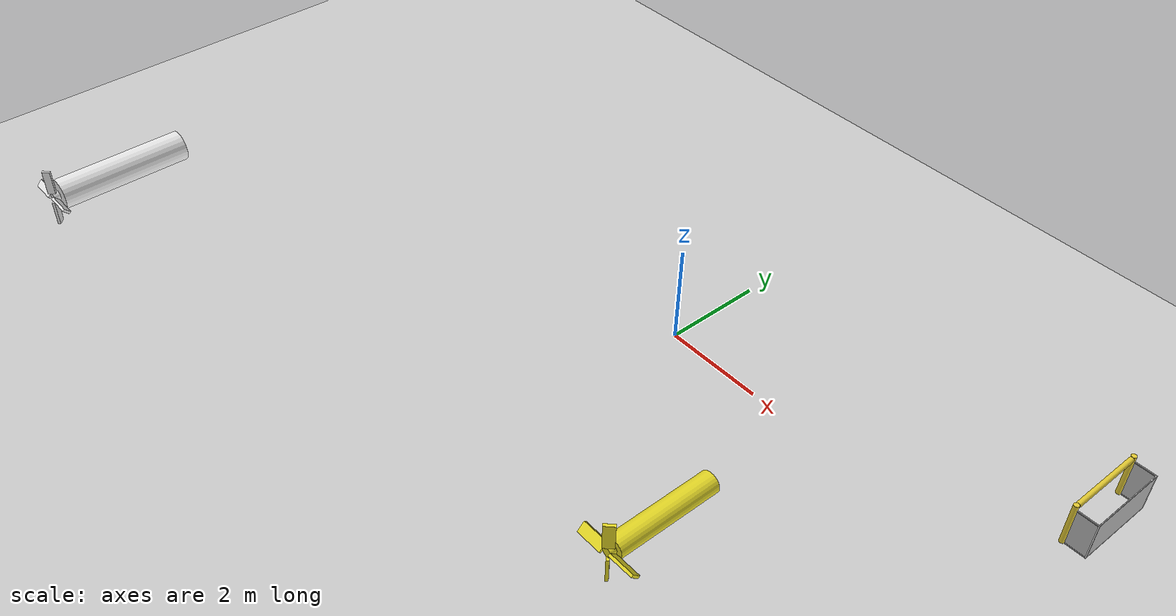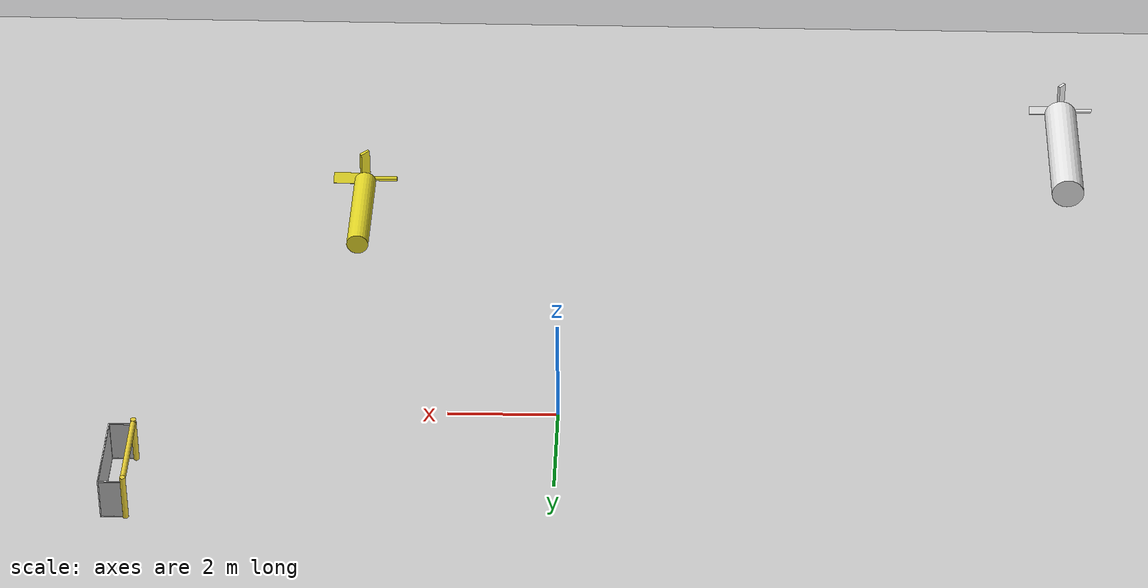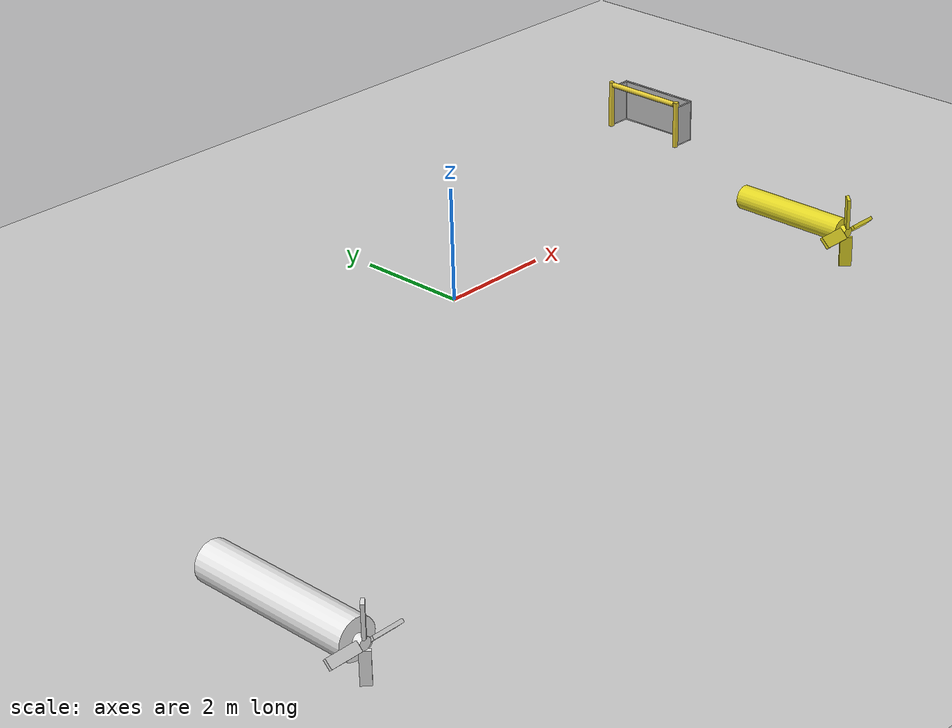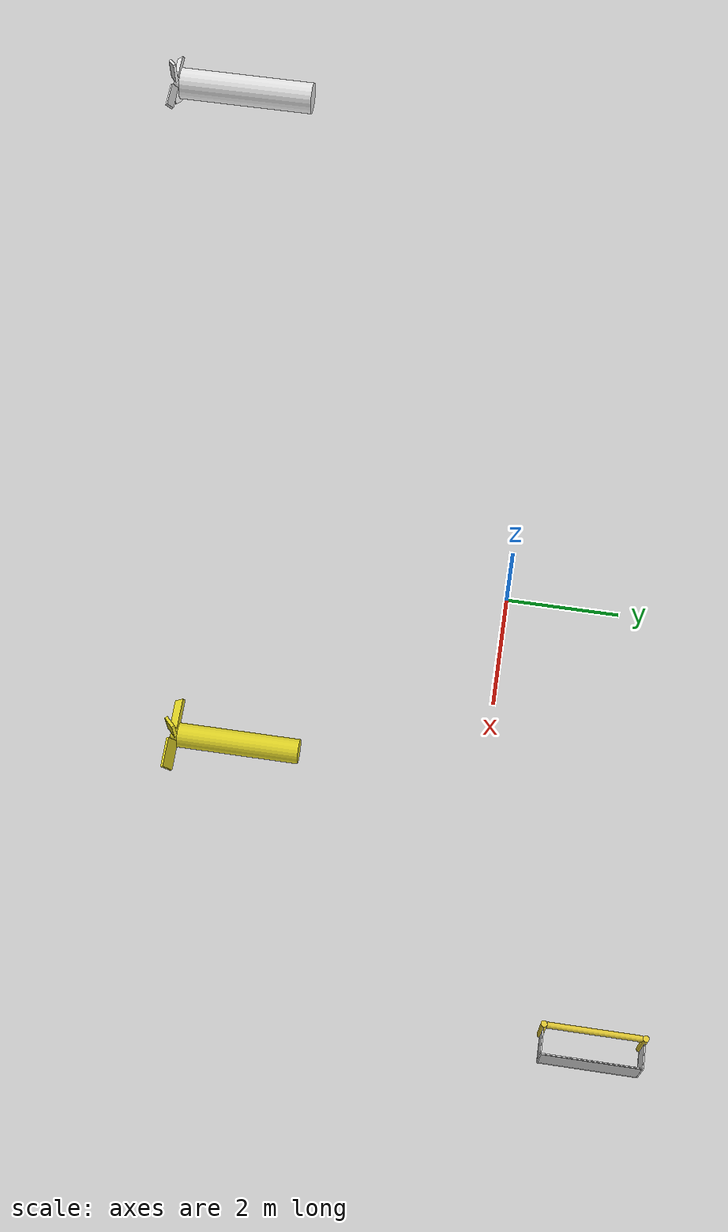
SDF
<sdf version="1.6">
 <world name="default">
  <light name="sun" type="directional">
   <cast_shadows>0</cast_shadows>
   <pose>0 0 10 0 -0 0</pose>
   <diffuse>0.8 0.8 0.8 1</diffuse>
   <specular>0.1 0.1 0.1 1</specular>
   <attenuation>
    <range>1000</range>
    <constant>0.9</constant>
    <linear>0.01</linear>
    <quadratic>0.001</quadratic>
   </attenuation>
   <direction>-0.5 0.5 -1</direction>
  </light>
  <model name="ground_plane">
   <static>1</static>
   <link name="link">
    <collision name="collision">
     <geometry><plane><normal>0 0 1</normal><size>100 100</size></plane></geometry>
     <surface><friction><ode><mu>100</mu><mu2>50</mu2></ode></friction></surface>
    </collision>
    <visual name="visual">
     <cast_shadows>0</cast_shadows>
     <geometry><plane><normal>0 0 1</normal><size>100 100</size></plane></geometry>
     <material>
      <script><uri>file://media/materials/scripts/gazebo.material</uri><name>Gazebo/Grey</name></script>
     </material>
    </visual>
   </link>
  </model>
  <gravity>0 0 -9.8</gravity>
  <magnetic_field>6e-06 2.3e-05 -4.2e-05</magnetic_field>
  <atmosphere type="adiabatic"/>
  <physics name="default_physics" default="0" type="ode">
   <max_step_size>0.001</max_step_size>
   <real_time_factor>1</real_time_factor>
   <real_time_update_rate>1000</real_time_update_rate>
  </physics>
  <scene><ambient>0.4 0.4 0.4 1</ambient><background>0.7 0.7 0.7 1</background><shadows>1</shadows></scene>
  <spherical_coordinates>
   <surface_model>EARTH_WGS84</surface_model>
   <latitude_deg>0</latitude_deg>
   <longitude_deg>0</longitude_deg>
   <elevation>0</elevation>
   <heading_deg>0</heading_deg>
  </spherical_coordinates>
  <model name="RoboCup 2014 SPL Goal">
   <static>1</static>
   <link name="left_post">
    <pose>0 0.8 0.45 0 -0 0</pose>
    <collision name="collision">
     <geometry><cylinder><radius>0.05</radius><length>0.9</length></cylinder></geometry>
    </collision>
    <visual name="visual">
     <geometry><cylinder><radius>0.05</radius><length>0.9</length></cylinder></geometry>
     <material>
      <script><uri>file://media/materials/scripts/gazebo.material</uri><name>Gazebo/ZincYellow</name></script>
     </material>
    </visual>
   </link>
   <link name="left_support_horiz_lower">
    <pose>0.24 0.8 0.01 0 -0 0</pose>
    <collision name="collision"><geometry><box><size>0.38 0.02 0.02</size></box></geometry></collision>
    <visual name="visual">
     <geometry><box><size>0.38 0.02 0.02</size></box></geometry>
     <material>
      <script><uri>file://media/materials/scripts/gazebo.material</uri><name>Gazebo/White</name></script>
     </material>
    </visual>
   </link>
   <link name="left_support_horiz_upper">
    <pose>0.24 0.8 0.79 0 -0 0</pose>
    <collision name="collision"><geometry><box><size>0.38 0.02 0.02</size></box></geometry></collision>
    <visual name="visual">
     <geometry><box><size>0.38 0.02 0.02</size></box></geometry>
     <material>
      <script><uri>file://media/materials/scripts/gazebo.material</uri><name>Gazebo/White</name></script>
     </material>
    </visual>
   </link>
   <link name="left_support_vertical">
    <pose>0.44 0.8 0.4 3.14159 1.57079 3.14159</pose>
    <collision name="collision"><geometry><box><size>0.8 0.02 0.02</size></box></geometry></collision>
    <visual name="visual">
     <geometry><box><size>0.8 0.02 0.02</size></box></geometry>
     <material>
      <script><uri>file://media/materials/scripts/gazebo.material</uri><name>Gazebo/White</name></script>
     </material>
    </visual>
   </link>
   <link name="right_support_horiz_lower">
    <pose>0.24 -0.8 0.01 0 -0 0</pose>
    <collision name="collision"><geometry><box><size>0.38 0.02 0.02</size></box></geometry></collision>
    <visual name="visual">
     <geometry><box><size>0.38 0.02 0.02</size></box></geometry>
     <material>
      <script><uri>file://media/materials/scripts/gazebo.material</uri><name>Gazebo/White</name></script>
     </material>
    </visual>
   </link>
   <link name="right_support_horiz_upper">
    <pose>0.24 -0.8 0.79 0 -0 0</pose>
    <collision name="collision"><geometry><box><size>0.38 0.02 0.02</size></box></geometry></collision>
    <visual name="visual">
     <geometry><box><size>0.38 0.02 0.02</size></box></geometry>
     <material>
      <script><uri>file://media/materials/scripts/gazebo.material</uri><name>Gazebo/White</name></script>
     </material>
    </visual>
   </link>
   <link name="right_support_vertical">
    <pose>0.44 -0.8 0.4 3.14159 1.57079 3.14159</pose>
    <collision name="collision"><geometry><box><size>0.8 0.02 0.02</size></box></geometry></collision>
    <visual name="visual">
     <geometry><box><size>0.8 0.02 0.02</size></box></geometry>
     <material>
      <script><uri>file://media/materials/scripts/gazebo.material</uri><name>Gazebo/White</name></script>
     </material>
    </visual>
   </link>
   <link name="center_support_horiz_lower">
    <pose>0.44 0 0.01 3.14159 1.57079 3.14159</pose>
    <collision name="collision"><geometry><box><size>0.02 1.58 0.02</size></box></geometry></collision>
    <visual name="visual">
     <geometry><box><size>0.02 1.58 0.02</size></box></geometry>
     <material>
      <script><uri>file://media/materials/scripts/gazebo.material</uri><name>Gazebo/White</name></script>
     </material>
    </visual>
   </link>
   <link name="center_support_horiz_upper">
    <pose>0.44 0 0.79 3.14159 1.57079 3.14159</pose>
    <collision name="collision"><geometry><box><size>0.02 1.58 0.02</size></box></geometry></collision>
    <visual name="visual">
     <geometry><box><size>0.02 1.58 0.02</size></box></geometry>
     <material>
      <script><uri>file://media/materials/scripts/gazebo.material</uri><name>Gazebo/White</name></script>
     </material>
    </visual>
   </link>
   <link name="right_post">
    <pose>0 -0.8 0.45 0 -0 0</pose>
    <collision name="collision">
     <geometry><cylinder><radius>0.05</radius><length>0.9</length></cylinder></geometry>
    </collision>
    <visual name="visual">
     <geometry><cylinder><radius>0.05</radius><length>0.9</length></cylinder></geometry>
     <material>
      <script><uri>file://media/materials/scripts/gazebo.material</uri><name>Gazebo/ZincYellow</name></script>
     </material>
    </visual>
   </link>
   <link name="crossbar">
    <pose>0 0 0.85 1.57 1.57 0</pose>
    <collision name="collision">
     <geometry><cylinder><radius>0.05</radius><length>1.5</length></cylinder></geometry>
    </collision>
    <visual name="visual">
     <geometry><cylinder><radius>0.05</radius><length>1.5</length></cylinder></geometry>
     <material>
      <script><uri>file://media/materials/scripts/gazebo.material</uri><name>Gazebo/ZincYellow</name></script>
     </material>
    </visual>
   </link>
   <link name="center_net">
    <pose>0.44 0 0.4 0 -0 0</pose>
    <collision name="collision"><geometry><box><size>0.01 1.6 0.8</size></box></geometry></collision>
    <visual name="visual">
     <geometry><box><size>0.01 1.6 0.8</size></box></geometry>
     <material>
      <script>
       <uri>model://robocup09_spl_field/materials/scripts/</uri>
       <uri>model://robocup09_spl_field/materials/textures/</uri>
       <name>RoboCup/Net</name>
      </script>
     </material>
    </visual>
   </link>
   <link name="left_net">
    <pose>0.24 0.8 0.4 0 -0 0</pose>
    <collision name="collision"><geometry><box><size>0.38 0.01 0.76</size></box></geometry></collision>
    <visual name="visual">
     <geometry><box><size>0.38 0.01 0.76</size></box></geometry>
     <material>
      <script>
       <uri>model://robocup09_spl_field/materials/scripts/</uri>
       <uri>model://robocup09_spl_field/materials/textures/</uri>
       <name>RoboCup/Net</name>
      </script>
     </material>
    </visual>
   </link>
   <link name="right_net">
    <pose>0.24 -0.8 0.4 0 -0 0</pose>
    <collision name="collision"><geometry><box><size>0.38 0.01 0.76</size></box></geometry></collision>
    <visual name="visual">
     <geometry><box><size>0.38 0.01 0.76</size></box></geometry>
     <material>
      <script>
       <uri>model://robocup09_spl_field/materials/scripts/</uri>
       <uri>model://robocup09_spl_field/materials/textures/</uri>
       <name>RoboCup/Net</name>
      </script>
     </material>
    </visual>
   </link>
   <pose>7.4596 2.2271 0 0 -0 0</pose>
  </model>
  <model name="submarine_buoyant">
   <pose>-9.36034 -7.37429 1.5 1.5708 -0 0</pose>
   <link name="body">
    <pose>0 0 -1.07935 0 -0 0</pose>
    <inertial>
     <mass>367.566</mass>
     <inertia><ixx>215.333</ixx><ixy>0</ixy><ixz>0</ixz><iyy>215.333</iyy><iyz>0</iyz><izz>16.5405</izz></inertia>
    </inertial>
    <visual name="body_visual">
     <geometry><cylinder><radius>0.3</radius><length>2.6</length></cylinder></geometry>
     <material>
      <script><uri>file://media/materials/scripts/gazebo.material</uri><name>Gazebo/White</name></script>
     </material>
    </visual>
    <collision name="body_collision">
     <geometry><cylinder><radius>0.3</radius><length>2.6</length></cylinder></geometry>
    </collision>
    <visual name="spacer_visual">
     <pose>0 0 1.37855 0 -0 0</pose>
     <geometry><cylinder><radius>0.0933402</radius><length>0.127211</length></cylinder></geometry>
     <material>
      <script><uri>file://media/materials/scripts/gazebo.material</uri><name>Gazebo/White</name></script>
     </material>
    </visual>
   </link>
   <link name="propeller">
    <pose>0 0 0.3455 3.14159 -0 0</pose>
    <inertial>
     <mass>8.41041</mass>
     <inertia>
      <ixx>0.177302</ixx>
      <ixy>0</ixy>
      <ixz>0</ixz>
      <iyy>0.177302</iyy>
      <iyz>0</iyz>
      <izz>0.350434</izz>
     </inertia>
    </inertial>
    <visual name="blade1_visual">
     <pose>0.34334 0 0 0.785398 -0 0</pose>
     <geometry><box><size>0.5 0.154178 0.05455</size></box></geometry>
     <material>
      <script><uri>file://media/materials/scripts/gazebo.material</uri><name>Gazebo/White</name></script>
     </material>
    </visual>
    <collision name="blade1_collision">
     <pose>0.34334 0 0 0.785398 -0 0</pose>
     <geometry><box><size>0.5 0.154178 0.05455</size></box></geometry>
    </collision>
    <visual name="blade2_visual">
     <pose>0 0.34334 0 0.785398 0 1.5708</pose>
     <geometry><box><size>0.5 0.154178 0.05455</size></box></geometry>
     <material>
      <script><uri>file://media/materials/scripts/gazebo.material</uri><name>Gazebo/White</name></script>
     </material>
    </visual>
    <collision name="blade2_collision">
     <pose>0 0.34334 0 0.785398 0 1.5708</pose>
     <geometry><box><size>0.5 0.154178 0.05455</size></box></geometry>
    </collision>
    <visual name="blade3_visual">
     <pose>-0.34334 -0 0 -0.785398 0 0</pose>
     <geometry><box><size>0.5 0.154178 0.05455</size></box></geometry>
     <material>
      <script><uri>file://media/materials/scripts/gazebo.material</uri><name>Gazebo/White</name></script>
     </material>
    </visual>
    <collision name="blade3_collision">
     <pose>-0.34334 -0 0 -0.785398 0 0</pose>
     <geometry><box><size>0.5 0.154178 0.05455</size></box></geometry>
    </collision>
    <visual name="blade4_visual">
     <pose>-0 -0.34334 0 -0.785398 -0 1.5708</pose>
     <geometry><box><size>0.5 0.154178 0.05455</size></box></geometry>
     <material>
      <script><uri>file://media/materials/scripts/gazebo.material</uri><name>Gazebo/White</name></script>
     </material>
    </visual>
    <collision name="blade4_collision">
     <pose>-0 -0.34334 0 -0.785398 -0 1.5708</pose>
     <geometry><box><size>0.5 0.154178 0.05455</size></box></geometry>
    </collision>
   </link>
   <joint name="spinning_joint" type="revolute">
    <parent>body</parent>
    <child>propeller</child>
    <axis>
     <xyz>0 0 1</xyz>
     <use_parent_model_frame>1</use_parent_model_frame>
     <limit><lower>-1e+12</lower><upper>1e+12</upper><effort>-1</effort><velocity>-1</velocity></limit>
     <dynamics><spring_reference>0</spring_reference><spring_stiffness>0</spring_stiffness></dynamics>
    </axis>
   </joint>
   <plugin name="buoyancy" filename="libBuoyancyPlugin.so"><fluid_density>999.1026</fluid_density></plugin>
  </model>
  <model name="submarine">
   <pose>3.81221 -4.04931 1.5 1.5708 -0 0</pose>
   <link name="body">
    <inertial>
     <mass>251.327</mass>
     <inertia><ixx>86.2891</ixx><ixy>0</ixy><ixz>0</ixz><iyy>86.2891</iyy><iyz>0</iyz><izz>5.02655</izz></inertia>
    </inertial>
    <visual name="body_visual">
     <geometry><cylinder><radius>0.2</radius><length>2</length></cylinder></geometry>
     <material>
      <script><uri>file://media/materials/scripts/gazebo.material</uri><name>Gazebo/Yellow</name></script>
     </material>
    </visual>
    <collision name="body_collision">
     <geometry><cylinder><radius>0.2</radius><length>2</length></cylinder></geometry>
    </collision>
    <visual name="spacer_visual">
     <pose>0 0 1.05855 0 -0 0</pose>
     <geometry><cylinder><radius>0.0933402</radius><length>0.127211</length></cylinder></geometry>
     <material>
      <script><uri>file://media/materials/scripts/gazebo.material</uri><name>Gazebo/Yellow</name></script>
     </material>
    </visual>
   </link>
   <link name="propeller">
    <pose>0 0 1.09 3.14159 -0 0</pose>
    <inertial>
     <mass>21.82</mass>
     <inertia>
      <ixx>0.459994</ixx>
      <ixy>0</ixy>
      <ixz>0</ixz>
      <iyy>0.459994</iyy>
      <iyz>0</iyz>
      <izz>0.909167</izz>
     </inertia>
    </inertial>
    <visual name="blade1_visual">
     <pose>0.34334 0 0 0.785398 -0 0</pose>
     <geometry><box><size>0.5 0.2 0.05455</size></box></geometry>
     <material>
      <script><uri>file://media/materials/scripts/gazebo.material</uri><name>Gazebo/Yellow</name></script>
     </material>
    </visual>
    <collision name="blade1_collision">
     <pose>0.34334 0 0 0.785398 -0 0</pose>
     <geometry><box><size>0.5 0.2 0.05455</size></box></geometry>
    </collision>
    <visual name="blade2_visual">
     <pose>0 0.34334 0 0.785398 0 1.5708</pose>
     <geometry><box><size>0.5 0.2 0.05455</size></box></geometry>
     <material>
      <script><uri>file://media/materials/scripts/gazebo.material</uri><name>Gazebo/Yellow</name></script>
     </material>
    </visual>
    <collision name="blade2_collision">
     <pose>0 0.34334 0 0.785398 0 1.5708</pose>
     <geometry><box><size>0.5 0.2 0.05455</size></box></geometry>
    </collision>
    <visual name="blade3_visual">
     <pose>-0.34334 -0 0 -0.785398 0 0</pose>
     <geometry><box><size>0.5 0.2 0.05455</size></box></geometry>
     <material>
      <script><uri>file://media/materials/scripts/gazebo.material</uri><name>Gazebo/Yellow</name></script>
     </material>
    </visual>
    <collision name="blade3_collision">
     <pose>-0.34334 -0 0 -0.785398 0 0</pose>
     <geometry><box><size>0.5 0.2 0.05455</size></box></geometry>
    </collision>
    <visual name="blade4_visual">
     <pose>-0 -0.34334 0 -0.785398 -0 1.5708</pose>
     <geometry><box><size>0.5 0.2 0.05455</size></box></geometry>
     <material>
      <script><uri>file://media/materials/scripts/gazebo.material</uri><name>Gazebo/Yellow</name></script>
     </material>
    </visual>
    <collision name="blade4_collision">
     <pose>-0 -0.34334 0 -0.785398 -0 1.5708</pose>
     <geometry><box><size>0.5 0.2 0.05455</size></box></geometry>
    </collision>
   </link>
   <joint name="spinning_joint" type="revolute">
    <parent>body</parent>
    <child>propeller</child>
    <axis>
     <xyz>0 0 1</xyz>
     <use_parent_model_frame>1</use_parent_model_frame>
     <limit><lower>-1e+12</lower><upper>1e+12</upper><effort>-1</effort><velocity>-1</velocity></limit>
     <dynamics><spring_reference>0</spring_reference><spring_stiffness>0</spring_stiffness></dynamics>
    </axis>
   </joint>
   <plugin name="submarine_propeller_1" filename="libLiftDragPlugin.so">
    <air_density>1000</air_density>
    <cla>1.2535816618911175</cla>
    <cla_stall>-1.4326647564469914</cla_stall>
    <cda>0</cda>
    <cda_stall>1.4326647564469914</cda_stall>
    <alpha_stall>1.396</alpha_stall>
    <a0>0</a0>
    <area>0.27637</area>
    <upward>0 -0.7071067811865476 -0.7071067811865475</upward>
    <forward>0 -0.7071067811865475 0.7071067811865476</forward>
    <link_name>propeller</link_name>
    <cp>0.35 0 0</cp>
   </plugin>
   <plugin name="submarine_propeller_2" filename="libLiftDragPlugin.so">
    <air_density>1000</air_density>
    <cla>1.2535816618911175</cla>
    <cla_stall>-1.4326647564469914</cla_stall>
    <cda>0</cda>
    <cda_stall>1.4326647564469914</cda_stall>
    <alpha_stall>1.396</alpha_stall>
    <a0>0</a0>
    <area>0.27637</area>
    <upward>-0.7071067811865475 0 -0.7071067811865476</upward>
    <forward>-0.7071067811865476 0 0.7071067811865475</forward>
    <link_name>propeller</link_name>
    <cp>0 -0.35 0</cp>
   </plugin>
   <plugin name="submarine_propeller_3" filename="libLiftDragPlugin.so">
    <air_density>1000</air_density>
    <cla>1.2535816618911175</cla>
    <cla_stall>-1.4326647564469914</cla_stall>
    <cda>0</cda>
    <cda_stall>1.4326647564469914</cda_stall>
    <alpha_stall>1.396</alpha_stall>
    <a0>0</a0>
    <area>0.27637</area>
    <upward>0 0.7071067811865475 -0.7071067811865476</upward>
    <forward>0 -0.7071067811865476 -0.7071067811865475</forward>
    <link_name>propeller</link_name>
    <cp>-0.35 0 0</cp>
   </plugin>
   <plugin name="submarine_propeller_4" filename="libLiftDragPlugin.so">
    <air_density>1000</air_density>
    <cla>1.2535816618911175</cla>
    <cla_stall>-1.4326647564469914</cla_stall>
    <cda>0</cda>
    <cda_stall>1.4326647564469914</cda_stall>
    <alpha_stall>1.396</alpha_stall>
    <a0>0</a0>
    <area>0.27637</area>
    <upward>0.7071067811865476 0 -0.7071067811865475</upward>
    <forward>0.7071067811865475 0 0.7071067811865476</forward>
    <link_name>propeller</link_name>
    <cp>0 0.35 0</cp>
   </plugin>
   <plugin name="buoyancy" filename="libBuoyancyPlugin.so"><fluid_density>1000</fluid_density></plugin>
  </model>
 </world>
</sdf>
